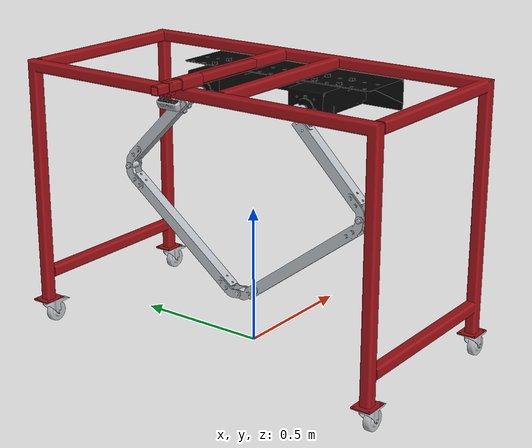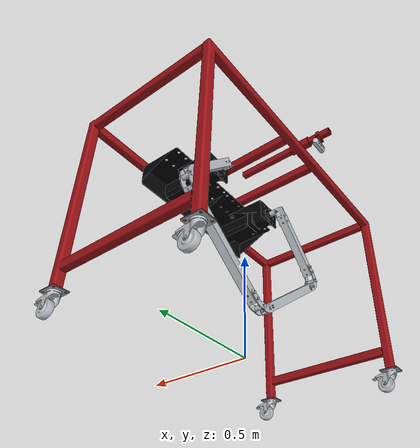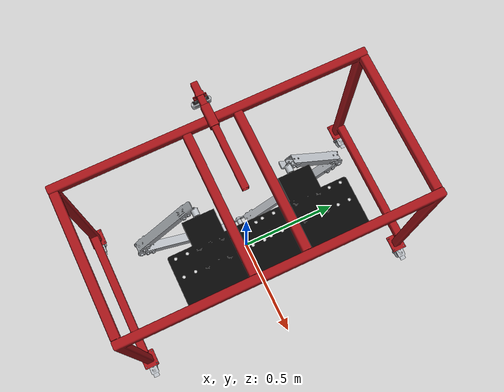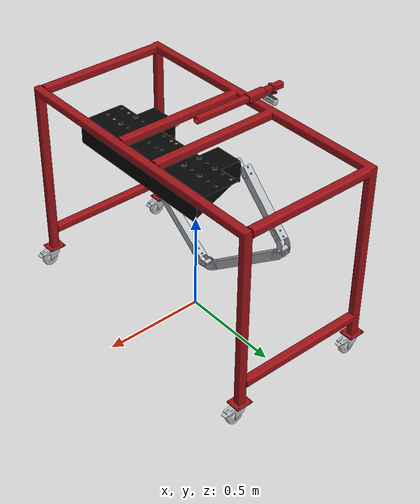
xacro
<?xml version="1.0"?>

<robot xmlns:xacro="http://www.ros.org/wiki/xacro" name="volcaniarm">

  <xacro:arg name="use_sim" default="true" />
  <xacro:arg name="mode" default="work" />
  <xacro:arg name="markers" default="false" />
  <xacro:arg name="camera_mount_x" default="0.25" />
  <xacro:arg name="camera_mount_pitch" default="1.3" />

  <xacro:arg name="camera_x" default="0.0160004150359285" />
  <xacro:arg name="camera_y" default="0.0" />
  <xacro:arg name="camera_z" default="0.0" />
  <xacro:arg name="camera_roll" default="3.14159" />
  <xacro:arg name="camera_pitch" default="0.0" />
  <xacro:arg name="camera_yaw" default="0.0" />
  <xacro:arg name="controller" default="traj" />
  <!-- AprilTag edge length in metres. Drives both the URDF mesh scale
       (via volcaniarm_apriltag.xacro) and the apriltag detector size
       parameter when forwarded by the bringup launches. -->
  <xacro:arg name="tag_size" default="0.064" />

  <xacro:arg name="planning" default="false" />

  <!-- Camera mount position tuning
       camera_mount_x range: 0.155 to 0.655
       camera_mount_pitch: rev joint pitch in radians -->
  <xacro:property name="camera_mount_x" value="$(arg camera_mount_x)" />
  <xacro:property name="camera_mount_pitch" value="$(arg camera_mount_pitch)" />

  <!-- Real-robot color palette (rgba xacro properties, inlined anonymously
       into each visual — see materials.xacro for why not named). -->
  <xacro:include filename="$(find volcaniarm_description)/urdf/materials.xacro" />

   <!-- ros2_control hardware interfaces -->
  <xacro:include filename="$(find volcaniarm_description)/urdf/volcaniarm_ros2_control.xacro" />

    <!-- Include Gazebo plugins -->
  <xacro:include filename="$(find volcaniarm_description)/urdf/volcaniarm_gazebo.xacro" />

  <!-- Include RealSense camera frames for real hardware -->
  <xacro:include filename="$(find volcaniarm_description)/urdf/volcaniarm_realsense.xacro" />

  <xacro:property name="mount_ee_marker"
    value="${'$(arg markers)' == 'true'}" />
  <xacro:property name="mount_base_marker"
    value="${'$(arg markers)' == 'true' and '$(arg mode)' == 'tests'}" />
  <xacro:property name="any_marker"
    value="${mount_ee_marker or mount_base_marker}" />
  <xacro:if value="${any_marker}">
    <xacro:include filename="$(find volcaniarm_description)/urdf/volcaniarm_apriltag.xacro" />
  </xacro:if>

  <!-- MoveIt phantom planning chain (volcaniarm_base_link -> tool0); off by default. -->
  <xacro:if value="$(arg planning)">
    <xacro:include filename="$(find volcaniarm_description)/urdf/volcaniarm_moveit.xacro" />
  </xacro:if>

  <!-- World fixed link -->
  <link name="world" />
  <joint name="world_to_base" type="fixed">
    <origin xyz="0 0 0.98" rpy="0 0 3.14159" />
    <parent link="world" />
    <child link="base_link" />
  </joint>

  <!-- base (table top) -->
  <link name="base_link">
    <inertial>
      <origin xyz="0.0033183 1.7612E-06 -0.24794" rpy="0 0 0" />
      <mass value="5.4796" />
      <inertia ixx="0.36605" ixy="-2.0049E-09" ixz="1.5542E-08"
               iyy="0.19294" iyz="-3.1213E-09" izz="0.31414" />
    </inertial>
    <visual>
      <origin xyz="0 0 0" rpy="0 0 0" />
      <geometry>
        <mesh filename="package://volcaniarm_description/meshes/base_link.STL" />
      </geometry>
      <material name="">
        <color rgba="${powder_red_rgba}" />
      </material>
    </visual>
    <collision>
      <origin xyz="0 0 0" rpy="0 0 0" />
      <geometry>
        <mesh filename="package://volcaniarm_description/meshes/base_link.STL" />
      </geometry>
    </collision>
  </link>

  <!-- ======================== TABLE LEGS ======================== -->

  <!-- Front-left table leg -->
  <link name="fl_table_leg_link">
    <inertial>
      <origin xyz="0 2.2204E-16 0.22347" rpy="0 0 0" />
      <mass value="0.15157" />
      <inertia ixx="0.0028107" ixy="-1.2462E-19" ixz="-4.3818E-20"
               iyy="0.0028135" iyz="-1.2312E-20" izz="5.0184E-05" />
    </inertial>
    <visual>
      <origin xyz="0 0 0" rpy="0 0 0" />
      <geometry>
        <mesh filename="package://volcaniarm_description/meshes/fl_table_leg_link.STL" />
      </geometry>
      <material name="">
        <color rgba="${powder_red_rgba}" />
      </material>
    </visual>
    <collision>
      <origin xyz="0 0 0" rpy="0 0 0" />
      <geometry>
        <mesh filename="package://volcaniarm_description/meshes/fl_table_leg_link.STL" />
      </geometry>
    </collision>
  </link>
  <joint name="fl_table_leg_joint" type="fixed">
    <origin xyz="0.340000000000002 0.697999999999994 -0.883" rpy="0 0 0" />
    <parent link="base_link" />
    <child link="fl_table_leg_link" />
  </joint>

  <!-- FL caster wheel mount -->
  <link name="fl_caster_wheel_mount_link">
    <inertial>
      <origin xyz="-0.011459 -7.0567E-09 -0.011665" rpy="0 0 0" />
      <mass value="0.047319" />
      <inertia ixx="1.6675E-05" ixy="-8.0944E-11" ixz="-8.1003E-07"
               iyy="2.9049E-05" iyz="-7.8988E-11" izz="3.76E-05" />
    </inertial>
    <visual>
      <origin xyz="0 0 0" rpy="0 0 0" />
      <geometry>
        <mesh filename="package://volcaniarm_description/meshes/fl_caster_wheel_mount_link.STL" />
      </geometry>
      <material name="">
        <color rgba="${galvanized_rgba}" />
      </material>
    </visual>
    <collision>
      <origin xyz="0 0 0" rpy="0 0 0" />
      <geometry>
        <mesh filename="package://volcaniarm_description/meshes/fl_caster_wheel_mount_link.STL" />
      </geometry>
    </collision>
  </link>
  <joint name="fl_caster_wheel_mount_joint" type="fixed">
    <origin xyz="0 0 0" rpy="0 0 0" />
    <parent link="fl_table_leg_link" />
    <child link="fl_caster_wheel_mount_link" />
  </joint>

  <!-- FL caster wheel -->
  <link name="fl_caster_wheel_link">
    <inertial>
      <origin xyz="0 -5.3545E-05 -1.1102E-16" rpy="0 0 0" />
      <mass value="0.12084" />
      <inertia ixx="4.6943E-05" ixy="2.8182E-17" ixz="-1.6458E-15"
               iyy="7.6353E-05" iyz="4.9423E-17" izz="4.6943E-05" />
    </inertial>
    <visual>
      <origin xyz="0 0 0" rpy="0 0 0" />
      <geometry>
        <mesh filename="package://volcaniarm_description/meshes/fl_caster_wheel_link.STL" />
      </geometry>
      <material name="">
        <color rgba="${galvanized_rgba}" />
      </material>
    </visual>
    <collision>
      <origin xyz="0 0 0" rpy="0 0 0" />
      <geometry>
        <mesh filename="package://volcaniarm_description/meshes/fl_caster_wheel_link.STL" />
      </geometry>
    </collision>
  </link>
  <joint name="fl_caster_wheel_joint" type="fixed">
    <origin xyz="-0.0324999999999998 0 -0.0595000000000001" rpy="0 0 0" />
    <parent link="fl_caster_wheel_mount_link" />
    <child link="fl_caster_wheel_link" />
  </joint>

  <!-- Front-right table leg -->
  <link name="fr_table_leg_link">
    <inertial>
      <origin xyz="-4.4409E-16 -5.5511E-17 0.22347" rpy="0 0 0" />
      <mass value="0.15157" />
      <inertia ixx="0.0028107" ixy="-2.7017E-19" ixz="2.3161E-21"
               iyy="0.0028135" iyz="-2.0835E-19" izz="5.0184E-05" />
    </inertial>
    <visual>
      <origin xyz="0 0 0" rpy="0 0 0" />
      <geometry>
        <mesh filename="package://volcaniarm_description/meshes/fr_table_leg_link.STL" />
      </geometry>
      <material name="">
        <color rgba="${powder_red_rgba}" />
      </material>
    </visual>
    <collision>
      <origin xyz="0 0 0" rpy="0 0 0" />
      <geometry>
        <mesh filename="package://volcaniarm_description/meshes/fr_table_leg_link.STL" />
      </geometry>
    </collision>
  </link>
  <joint name="fr_table_leg_joint" type="fixed">
    <origin xyz="0.340000000000005 -0.697999999999998 -0.883" rpy="0 0 0" />
    <parent link="base_link" />
    <child link="fr_table_leg_link" />
  </joint>

  <!-- FR caster wheel mount -->
  <link name="fr_caster_wheel_mount_link">
    <inertial>
      <origin xyz="-0.011459 -7.0567E-09 -0.011665" rpy="0 0 0" />
      <mass value="0.047319" />
      <inertia ixx="1.6675E-05" ixy="-8.0944E-11" ixz="-8.1003E-07"
               iyy="2.9049E-05" iyz="-7.8988E-11" izz="3.76E-05" />
    </inertial>
    <visual>
      <origin xyz="0 0 0" rpy="0 0 0" />
      <geometry>
        <mesh filename="package://volcaniarm_description/meshes/fr_caster_wheel_mount_link.STL" />
      </geometry>
      <material name="">
        <color rgba="${galvanized_rgba}" />
      </material>
    </visual>
    <collision>
      <origin xyz="0 0 0" rpy="0 0 0" />
      <geometry>
        <mesh filename="package://volcaniarm_description/meshes/fr_caster_wheel_mount_link.STL" />
      </geometry>
    </collision>
  </link>
  <joint name="fr_caster_wheel_mount_joint" type="fixed">
    <origin xyz="0 0 0" rpy="0 0 0" />
    <parent link="fr_table_leg_link" />
    <child link="fr_caster_wheel_mount_link" />
  </joint>

  <!-- FR caster wheel -->
  <link name="fr_caster_wheel_link">
    <inertial>
      <origin xyz="0 -5.3545E-05 0" rpy="0 0 0" />
      <mass value="0.12084" />
      <inertia ixx="4.6943E-05" ixy="2.8345E-17" ixz="-1.6458E-15"
               iyy="7.6353E-05" iyz="4.9116E-17" izz="4.6943E-05" />
    </inertial>
    <visual>
      <origin xyz="0 0 0" rpy="0 0 0" />
      <geometry>
        <mesh filename="package://volcaniarm_description/meshes/fr_caster_wheel_link.STL" />
      </geometry>
      <material name="">
        <color rgba="${galvanized_rgba}" />
      </material>
    </visual>
    <collision>
      <origin xyz="0 0 0" rpy="0 0 0" />
      <geometry>
        <mesh filename="package://volcaniarm_description/meshes/fr_caster_wheel_link.STL" />
      </geometry>
    </collision>
  </link>
  <joint name="fr_caster_wheel_joint" type="fixed">
    <origin xyz="-0.0324999999999998 0 -0.0594999999999999" rpy="0 0 0" />
    <parent link="fr_caster_wheel_mount_link" />
    <child link="fr_caster_wheel_link" />
  </joint>

  <!-- Rear-left table leg -->
  <link name="rl_table_leg_link">
    <inertial>
      <origin xyz="2.2204E-16 4.4409E-16 0.22347" rpy="0 0 0" />
      <mass value="0.15157" />
      <inertia ixx="0.0028107" ixy="-6.6369E-21" ixz="3.4765E-19"
               iyy="0.0028135" iyz="-1.384E-18" izz="5.0184E-05" />
    </inertial>
    <visual>
      <origin xyz="0 0 0" rpy="0 0 0" />
      <geometry>
        <mesh filename="package://volcaniarm_description/meshes/rl_table_leg_link.STL" />
      </geometry>
      <material name="">
        <color rgba="${powder_red_rgba}" />
      </material>
    </visual>
    <collision>
      <origin xyz="0 0 0" rpy="0 0 0" />
      <geometry>
        <mesh filename="package://volcaniarm_description/meshes/rl_table_leg_link.STL" />
      </geometry>
    </collision>
  </link>
  <joint name="rl_table_leg_joint" type="fixed">
    <origin xyz="-0.340000000000005 0.697999999999997 -0.883" rpy="0 0 0" />
    <parent link="base_link" />
    <child link="rl_table_leg_link" />
  </joint>

  <!-- RL caster wheel mount -->
  <link name="rl_caster_wheel_mount_link">
    <inertial>
      <origin xyz="-0.011459 -7.0567E-09 -0.011665" rpy="0 0 0" />
      <mass value="0.047319" />
      <inertia ixx="1.6675E-05" ixy="-8.0944E-11" ixz="-8.1003E-07"
               iyy="2.9049E-05" iyz="-7.8988E-11" izz="3.76E-05" />
    </inertial>
    <visual>
      <origin xyz="0 0 0" rpy="0 0 0" />
      <geometry>
        <mesh filename="package://volcaniarm_description/meshes/rl_caster_wheel_mount_link.STL" />
      </geometry>
      <material name="">
        <color rgba="${galvanized_rgba}" />
      </material>
    </visual>
    <collision>
      <origin xyz="0 0 0" rpy="0 0 0" />
      <geometry>
        <mesh filename="package://volcaniarm_description/meshes/rl_caster_wheel_mount_link.STL" />
      </geometry>
    </collision>
  </link>
  <joint name="rl_caster_wheel_mount_joint" type="fixed">
    <origin xyz="0 0 0" rpy="0 0 0" />
    <parent link="rl_table_leg_link" />
    <child link="rl_caster_wheel_mount_link" />
  </joint>

  <!-- RL caster wheel -->
  <link name="rl_caster_wheel_link">
    <inertial>
      <origin xyz="-2.2204E-16 -5.3545E-05 2.2204E-16" rpy="0 0 0" />
      <mass value="0.12084" />
      <inertia ixx="4.6943E-05" ixy="2.8308E-17" ixz="-1.6458E-15"
               iyy="7.6353E-05" iyz="4.8989E-17" izz="4.6943E-05" />
    </inertial>
    <visual>
      <origin xyz="0 0 0" rpy="0 0 0" />
      <geometry>
        <mesh filename="package://volcaniarm_description/meshes/rl_caster_wheel_link.STL" />
      </geometry>
      <material name="">
        <color rgba="${galvanized_rgba}" />
      </material>
    </visual>
    <collision>
      <origin xyz="0 0 0" rpy="0 0 0" />
      <geometry>
        <mesh filename="package://volcaniarm_description/meshes/rl_caster_wheel_link.STL" />
      </geometry>
    </collision>
  </link>
  <joint name="rl_caster_wheel_joint" type="fixed">
    <origin xyz="-0.0325 0 -0.0595" rpy="0 0 0" />
    <parent link="rl_caster_wheel_mount_link" />
    <child link="rl_caster_wheel_link" />
  </joint>

  <!-- Rear-right table leg -->
  <link name="rr_table_leg_link">
    <inertial>
      <origin xyz="2.2204E-16 1.1102E-16 0.22347" rpy="0 0 0" />
      <mass value="0.15157" />
      <inertia ixx="0.0028107" ixy="-1.1843E-20" ixz="2.1315E-20"
               iyy="0.0028135" iyz="-2.3739E-18" izz="5.0184E-05" />
    </inertial>
    <visual>
      <origin xyz="0 0 0" rpy="0 0 0" />
      <geometry>
        <mesh filename="package://volcaniarm_description/meshes/rr_table_leg_link.STL" />
      </geometry>
      <material name="">
        <color rgba="${powder_red_rgba}" />
      </material>
    </visual>
    <collision>
      <origin xyz="0 0 0" rpy="0 0 0" />
      <geometry>
        <mesh filename="package://volcaniarm_description/meshes/rr_table_leg_link.STL" />
      </geometry>
    </collision>
  </link>
  <joint name="rr_table_leg_joint" type="fixed">
    <origin xyz="-0.339999999999995 -0.698000000000003 -0.883" rpy="0 0 0" />
    <parent link="base_link" />
    <child link="rr_table_leg_link" />
  </joint>

  <!-- RR caster wheel mount -->
  <link name="rr_caster_wheel_mount_link">
    <inertial>
      <origin xyz="-0.011459 -7.0567E-09 -0.011665" rpy="0 0 0" />
      <mass value="0.047319" />
      <inertia ixx="1.6675E-05" ixy="-8.0944E-11" ixz="-8.1003E-07"
               iyy="2.9049E-05" iyz="-7.8988E-11" izz="3.76E-05" />
    </inertial>
    <visual>
      <origin xyz="0 0 0" rpy="0 0 0" />
      <geometry>
        <mesh filename="package://volcaniarm_description/meshes/rr_caster_wheel_mount_link.STL" />
      </geometry>
      <material name="">
        <color rgba="${galvanized_rgba}" />
      </material>
    </visual>
    <collision>
      <origin xyz="0 0 0" rpy="0 0 0" />
      <geometry>
        <mesh filename="package://volcaniarm_description/meshes/rr_caster_wheel_mount_link.STL" />
      </geometry>
    </collision>
  </link>
  <joint name="rr_caster_wheel_mount_joint" type="fixed">
    <origin xyz="0 0 0" rpy="0 0 0" />
    <parent link="rr_table_leg_link" />
    <child link="rr_caster_wheel_mount_link" />
  </joint>

  <!-- RR caster wheel -->
  <link name="rr_caster_wheel_link">
    <inertial>
      <origin xyz="2.2204E-16 -5.3545E-05 0" rpy="0 0 0" />
      <mass value="0.12084" />
      <inertia ixx="4.6943E-05" ixy="2.8252E-17" ixz="-1.6459E-15"
               iyy="7.6353E-05" iyz="4.9045E-17" izz="4.6943E-05" />
    </inertial>
    <visual>
      <origin xyz="0 0 0" rpy="0 0 0" />
      <geometry>
        <mesh filename="package://volcaniarm_description/meshes/rr_caster_wheel_link.STL" />
      </geometry>
      <material name="">
        <color rgba="${galvanized_rgba}" />
      </material>
    </visual>
    <collision>
      <origin xyz="0 0 0" rpy="0 0 0" />
      <geometry>
        <mesh filename="package://volcaniarm_description/meshes/rr_caster_wheel_link.STL" />
      </geometry>
    </collision>
  </link>
  <joint name="rr_caster_wheel_joint" type="fixed">
    <origin xyz="-0.0324999999999998 0 -0.0595" rpy="0 0 0" />
    <parent link="rr_caster_wheel_mount_link" />
    <child link="rr_caster_wheel_link" />
  </joint>

  <!-- ======================== VOLCANIARM BASE ======================== -->

  <link name="volcaniarm_base_link">
    <inertial>
      <origin xyz="0.056584 -3.9432E-11 0.053171" rpy="0 0 0" />
      <mass value="5.2358" />
      <inertia ixx="0.045054" ixy="5.2217E-06" ixz="0.00071509"
               iyy="0.014737" iyz="3.2233E-10" izz="0.053493" />
    </inertial>
    <visual>
      <origin xyz="0 0 0" rpy="0 0 0" />
      <geometry>
        <mesh filename="package://volcaniarm_description/meshes/volcaniarm_base_link.STL" />
      </geometry>
      <material name="">
        <color rgba="${steel_black_rgba}" />
      </material>
    </visual>
    <collision>
      <origin xyz="0 0 0" rpy="0 0 0" />
      <geometry>
        <mesh filename="package://volcaniarm_description/meshes/volcaniarm_base_link.STL" />
      </geometry>
    </collision>
  </link>
  <joint name="volcaniarm_base_joint" type="fixed">
    <origin xyz="-0.218000000000013 0 -0.0199999999999894" rpy="3.14159265358979 0 0" />
    <parent link="base_link" />
    <child link="volcaniarm_base_link" />
  </joint>

  <!-- ======================== LEFT ELBOW + ARM ======================== -->

  <link name="volcaniarm_left_elbow_link">
    <inertial>
      <origin xyz="-0.0035388 0.00032928 0.20807" rpy="0 0 0" />
      <mass value="0.25539" />
      <inertia ixx="0.0015999" ixy="2.5707E-06" ixz="-4.8958E-07"
               iyy="0.0016014" iyz="-4.1044E-06" izz="8.8962E-05" />
    </inertial>
    <visual>
      <origin xyz="0 0 0" rpy="0 0 0" />
      <geometry>
        <mesh filename="package://volcaniarm_description/meshes/volcaniarm_left_elbow_link.STL" />
      </geometry>
      <material name="">
        <color rgba="${galvanized_rgba}" />
      </material>
    </visual>
    <collision>
      <origin xyz="0 0 0" rpy="0 0 0" />
      <geometry>
        <mesh filename="package://volcaniarm_description/meshes/volcaniarm_left_elbow_link.STL" />
      </geometry>
    </collision>
  </link>
  <joint name="volcaniarm_left_elbow_joint" type="revolute">
    <origin xyz="0.285 -0.215 0.0632" rpy="0.7854 0 0" />
    <parent link="volcaniarm_base_link" />
    <child link="volcaniarm_left_elbow_link" />
    <axis xyz="1 0 0" />
    <limit lower="-3.14" upper="3.14" effort="10" velocity="10" />
    <dynamics damping="0.1" friction="0.1" />
  </joint>

  <link name="volcaniarm_left_arm_link">
    <inertial>
      <origin xyz="-1.1102E-15 -0.019365 0.31121" rpy="0 0 0" />
      <mass value="0.31139" />
      <inertia ixx="0.0060642" ixy="-1.1232E-13" ixz="7.5126E-14"
               iyy="0.0060587" iyz="1.0603E-13" izz="0.00011844" />
    </inertial>
    <visual>
      <origin xyz="0 0 0" rpy="0 0 0" />
      <geometry>
        <mesh filename="package://volcaniarm_description/meshes/volcaniarm_left_arm_link.STL" />
      </geometry>
      <material name="">
        <color rgba="${galvanized_rgba}" />
      </material>
    </visual>
    <collision>
      <origin xyz="0 0 0" rpy="0 0 0" />
      <geometry>
        <mesh filename="package://volcaniarm_description/meshes/volcaniarm_left_arm_link.STL" />
      </geometry>
    </collision>
  </link>
  <joint name="volcaniarm_left_arm_joint" type="revolute">
    <origin xyz="0.004 0.02 0.41621" rpy="-1.7053 0 0" />
    <parent link="volcaniarm_left_elbow_link" />
    <child link="volcaniarm_left_arm_link" />
    <axis xyz="1 0 0" />
    <limit lower="-3.14" upper="3.14" effort="10" velocity="10" />
    <dynamics damping="0.1" friction="0.1" />
  </joint>

  <!-- ======================== RIGHT ELBOW + ARM ======================== -->

  <link name="volcaniarm_right_elbow_link">
    <inertial>
      <origin xyz="-0.0035272 -0.0032768 0.20822" rpy="0 0 0" />
      <mass value="0.25516" />
      <inertia ixx="0.0015999" ixy="2.5707E-06" ixz="-4.8958E-07"
               iyy="0.0016014" iyz="2.7775E-06" izz="8.8958E-05" />
    </inertial>
    <visual>
      <origin xyz="0 0 0" rpy="0 0 0" />
      <geometry>
        <mesh filename="package://volcaniarm_description/meshes/volcaniarm_right_elbow_link.STL" />
      </geometry>
      <material name="">
        <color rgba="${galvanized_rgba}" />
      </material>
    </visual>
    <collision>
      <origin xyz="0 0 0" rpy="0 0 0" />
      <geometry>
        <mesh filename="package://volcaniarm_description/meshes/volcaniarm_right_elbow_link.STL" />
      </geometry>
    </collision>
  </link>
  <joint name="volcaniarm_right_elbow_joint" type="revolute">
    <origin xyz="0.289 0.215 0.0632" rpy="-0.7854 0 0" />
    <parent link="volcaniarm_base_link" />
    <child link="volcaniarm_right_elbow_link" />
    <axis xyz="1 0 0" />
    <limit lower="-3.14" upper="3.14" effort="10" velocity="10" />
    <dynamics damping="0.1" friction="0.1" />
  </joint>

  <link name="volcaniarm_right_arm_link">
    <inertial>
      <origin xyz="-0.00010972 0.018304 0.32828" rpy="0 0 0" />
      <mass value="0.32945" />
      <inertia ixx="0.0060651" ixy="4.6871E-12" ixz="3.074E-12"
               iyy="0.0060639" iyz="3.1157E-09" izz="0.00012364" />
    </inertial>
    <visual>
      <origin xyz="0 0 0" rpy="0 0 0" />
      <geometry>
        <mesh filename="package://volcaniarm_description/meshes/volcaniarm_right_arm_link.STL" />
      </geometry>
      <material name="">
        <color rgba="${galvanized_rgba}" />
      </material>
    </visual>
    <collision>
      <origin xyz="0 0 0" rpy="0 0 0" />
      <geometry>
        <mesh filename="package://volcaniarm_description/meshes/volcaniarm_right_arm_link.STL" />
      </geometry>
    </collision>
  </link>
  <joint name="volcaniarm_right_arm_joint" type="revolute">
    <origin xyz="0.004 -0.02 0.41621" rpy="1.7053 0 0" />
    <parent link="volcaniarm_right_elbow_link" />
    <child link="volcaniarm_right_arm_link" />
    <axis xyz="1 0 0" />
    <limit lower="-3.14" upper="3.14" effort="10" velocity="10" />
    <dynamics damping="0.1" friction="0.1" />
  </joint>

  <!-- ======================== CAMERA MOUNT ======================== -->

  <xacro:property name="camera_on_robot"
    value="${'$(arg mode)' == 'work'}" />

  <xacro:if value="${camera_on_robot}">
  <link name="camera_mount_linear_link">
    <inertial>
      <origin xyz="0 0 0" rpy="0 0 0" />
      <mass value="0.1" />
      <inertia ixx="1e-4" ixy="0" ixz="0" iyy="1e-4" iyz="0" izz="1e-4" />
    </inertial>
    <visual>
      <origin xyz="0 0 0" rpy="0 0 0" />
      <geometry>
        <mesh filename="package://volcaniarm_description/meshes/camera_mount_linear_link.STL" />
      </geometry>
      <material name="">
        <color rgba="${powder_red_rgba}" />
      </material>
    </visual>
    <collision>
      <origin xyz="0 0 0" rpy="0 0 0" />
      <geometry>
        <mesh filename="package://volcaniarm_description/meshes/camera_mount_linear_link.STL" />
      </geometry>
    </collision>
  </link>
  <joint name="camera_mount_linear_joint" type="fixed">
    <origin xyz="${camera_mount_x} 0 0.039999999999992" rpy="0 0 0" />
    <parent link="base_link" />
    <child link="camera_mount_linear_link" />
  </joint>

  <link name="camera_mount_rev_link">
    <inertial>
      <origin xyz="-0.00010268 -1.5812E-06 0.01215" rpy="0 0 0" />
      <mass value="0.006837" />
      <inertia ixx="2.4745E-06" ixy="8.8137E-13" ixz="-4.848E-10"
               iyy="2.6062E-07" iyz="-1.1636E-11" izz="2.5357E-06" />
    </inertial>
    <visual>
      <origin xyz="0 0 0" rpy="0 1.5708 0" />
      <geometry>
        <mesh filename="package://volcaniarm_description/meshes/camera_mount_rev_link.STL" />
      </geometry>
      <material name="">
        <color rgba="${plastic_black_rgba}" />
      </material>
    </visual>
    <collision>
      <origin xyz="0 0 0" rpy="0 1.5708 0" />
      <geometry>
        <mesh filename="package://volcaniarm_description/meshes/camera_mount_rev_link.STL" />
      </geometry>
    </collision>
  </link>
  <joint name="camera_mount_rev_joint" type="fixed">
    <origin xyz="0.192000000000008 0 -0.0290000000000052"
            rpy="3.14159265358979 ${camera_mount_pitch} 3.14159265358979" />
    <parent link="camera_mount_linear_link" />
    <child link="camera_mount_rev_link" />
  </joint>
  </xacro:if>

  <!-- ======================== CAMERA ======================== -->

  <link name="camera_link">
    <inertial>
      <origin xyz="-6.0219E-07 0.00024591 0.011952" rpy="0 0 0" />
      <mass value="0.044753" />
      <inertia ixx="2.7362E-05" ixy="3.9858E-09" ixz="7.9052E-10"
               iyy="3.9447E-06" iyz="2.4433E-07" izz="2.7278E-05" />
    </inertial>
    <visual>
      <origin xyz="0 0 0" rpy="0 1.5708 0" />
      <geometry>
        <mesh filename="package://volcaniarm_description/meshes/camera_link.STL" />
      </geometry>
      <material name="">
        <color rgba="${galvanized_rgba}" />
      </material>
    </visual>
    <collision>
      <origin xyz="0 0 0" rpy="0 1.5708 0" />
      <geometry>
        <mesh filename="package://volcaniarm_description/meshes/camera_link.STL" />
      </geometry>
    </collision>
  </link>
  <xacro:if value="${camera_on_robot}">
    <joint name="camera_joint" type="fixed">
      <origin xyz="$(arg camera_x) $(arg camera_y) $(arg camera_z)"
              rpy="$(arg camera_roll) $(arg camera_pitch) $(arg camera_yaw)" />
      <parent link="camera_mount_rev_link" />
      <child link="camera_link" />
    </joint>
  </xacro:if>

  <!-- Camera optical frame -->
  <link name="camera_link_optical" />
  <joint name="camera_optical_joint" type="fixed">
    <origin xyz="0 0 0" rpy="-1.5708 0 -1.5708" />
    <parent link="camera_link" />
    <child link="camera_link_optical" />
  </joint>

  <!-- ======================== 5-BAR LINKAGE CLOSURE ======================== -->

  <!-- Massless tip frame fixed to the right arm at the physical closure point -->
  <link name="right_arm_tip_link">
    <inertial>
      <origin xyz="0 0 0" rpy="0 0 0" />
      <mass value="0.001" />
      <inertia ixx="1e-6" ixy="0" ixz="0" iyy="1e-6" iyz="0" izz="1e-6" />
    </inertial>
    <visual>
      <origin xyz="0 0 0" rpy="0 0 0" />
      <geometry>
        <sphere radius="0.008" />
      </geometry>
      <material name="tip_green">
        <color rgba="${tip_green_rgba}" />
      </material>
    </visual>
    <collision>
      <origin xyz="0 0 0" rpy="0 0 0" />
      <geometry>
        <sphere radius="0.008" />
      </geometry>
    </collision>
  </link>
  <joint name="right_arm_tip_joint" type="fixed">
    <origin xyz="0 0 0.6225" rpy="0 0 0" />
    <parent link="volcaniarm_right_arm_link" />
    <child link="right_arm_tip_link" />
  </joint>
  <!-- Prevent Gazebo from merging this fixed joint so DetachableJoint can find the link -->
  <gazebo reference="right_arm_tip_joint">
    <preserveFixedJoint>true</preserveFixedJoint>
  </gazebo>

  <!-- Closure dummy link: URDF-tree leaf on the left arm, DetachableJoint target -->
  <link name="closure_dummy_link">
    <inertial>
      <origin xyz="0 0 0" rpy="0 0 0" />
      <mass value="0.001" />
      <inertia ixx="1e-6" ixy="0" ixz="0" iyy="1e-6" iyz="0" izz="1e-6" />
    </inertial>
    <visual>
      <origin xyz="0 0 0" rpy="0 0 0" />
      <geometry>
        <sphere radius="0.008" />
      </geometry>
      <material name="closure_purple">
        <color rgba="${closure_purple_rgba}" />
      </material>
    </visual>
    <collision>
      <origin xyz="0 0 0" rpy="0 0 0" />
      <geometry>
        <sphere radius="0.008" />
      </geometry>
    </collision>
  </link>
  <joint name="closure_joint" type="revolute">
    <origin xyz="0 0 0.6225" rpy="1.8398 0 0" />
    <parent link="volcaniarm_left_arm_link" />
    <child link="closure_dummy_link" />
    <axis xyz="1 0 0" />
    <limit lower="-3.14" upper="3.14" effort="0" velocity="10" />
    <dynamics damping="0.1" friction="0.0" />
  </joint>

</robot>

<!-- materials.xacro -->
<robot xmlns:xacro="http://www.ros.org/wiki/xacro">

  <!-- Powder-coated red table frame (base_link + table legs). -->
  <xacro:property name="powder_red_rgba" value="0.62 0.07 0.09 1.0"/>

  <!-- Cool galvanized steel (arm links, camera, casters). -->
  <xacro:property name="galvanized_rgba" value="0.72 0.74 0.76 1.0"/>

  <!-- Painted black steel (arm mounting column). -->
  <xacro:property name="steel_black_rgba" value="0.02 0.02 0.02 1.0"/>

  <!-- Matte black printed plastic (camera rev mount). -->
  <xacro:property name="plastic_black_rgba" value="0.04 0.04 0.04 1.0"/>

  <!-- Debug-visual colors (closure scaffolding spheres — sim-side aids,
       stripped from the Isaac URDF by sync_urdf.py). -->
  <xacro:property name="tip_green_rgba" value="0.0 1.0 0.0 1.0"/>
  <xacro:property name="closure_purple_rgba" value="0.6 0.0 0.8 1.0"/>

</robot>

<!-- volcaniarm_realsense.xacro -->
<robot xmlns:xacro="http://www.ros.org/wiki/xacro" name="volcaniarm_realsense">

  <xacro:arg name="calibration_camera_x"     default="-1.5" />
  <xacro:arg name="calibration_camera_y"     default="0.0" />
  <xacro:arg name="calibration_camera_z"     default="0.65" />
  <xacro:arg name="calibration_camera_roll"  default="0.0" />
  <xacro:arg name="calibration_camera_pitch" default="0.0" />
  <xacro:arg name="calibration_camera_yaw"   default="0.0" />

  <xacro:if value="${'$(arg mode)' == 'tests'}">
    <joint name="calibration_camera_joint" type="fixed">
      <origin xyz="$(arg calibration_camera_x) $(arg calibration_camera_y) $(arg calibration_camera_z)"
              rpy="$(arg calibration_camera_roll) $(arg calibration_camera_pitch) $(arg calibration_camera_yaw)" />
      <parent link="world" />
      <child link="camera_link" />
    </joint>
  </xacro:if>

  <link name="camera_depth_frame" />
  <joint name="camera_depth_joint" type="fixed">
    <origin xyz="0 0 0" rpy="0 0 0" />
    <parent link="camera_link" />
    <child link="camera_depth_frame" />
  </joint>

  <link name="camera_depth_optical_frame" />
  <joint name="camera_depth_optical_joint" type="fixed">
    <origin xyz="0 0 0" rpy="-1.5708 0 -1.5708" />
    <parent link="camera_depth_frame" />
    <child link="camera_depth_optical_frame" />
  </joint>

  <link name="camera_color_frame" />
  <joint name="camera_color_joint" type="fixed">
    <origin xyz="0 0 0" rpy="0 0 0" />
    <parent link="camera_link" />
    <child link="camera_color_frame" />
  </joint>

  <link name="camera_color_optical_frame" />
  <joint name="camera_color_optical_joint" type="fixed">
    <origin xyz="0 0 0" rpy="-1.5708 0 -1.5708" />
    <parent link="camera_color_frame" />
    <child link="camera_color_optical_frame" />
  </joint>

  <xacro:unless value="$(arg use_sim)">
    <link name="camera_camera_link" />
    <joint name="camera_to_realsense" type="fixed">
      <origin xyz="0 0 0" rpy="0 0 0" />
      <parent link="camera_link" />
      <child link="camera_camera_link" />
    </joint>
  </xacro:unless>

</robot>
